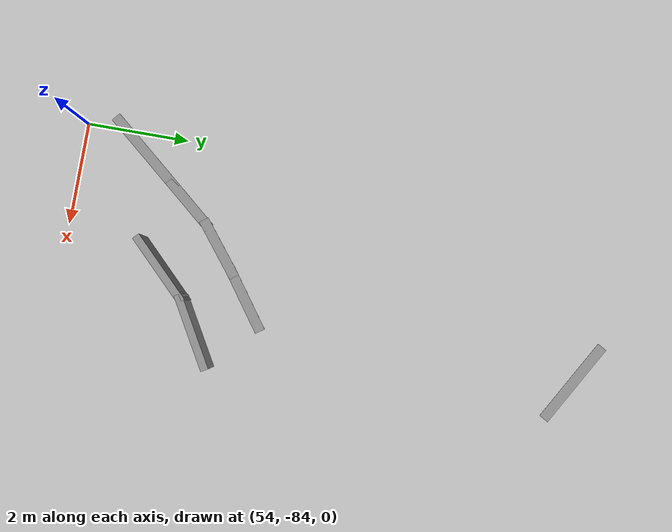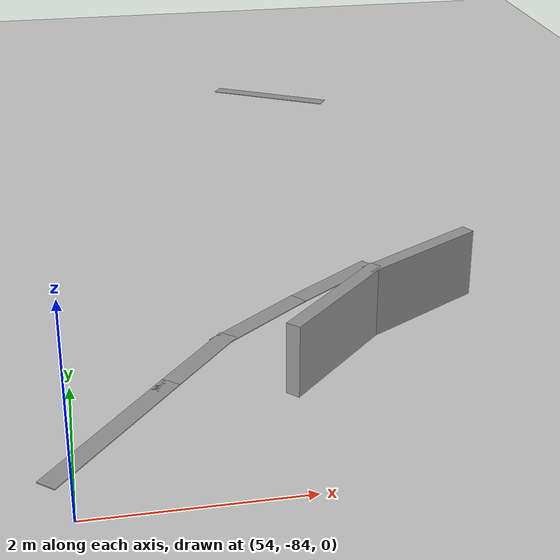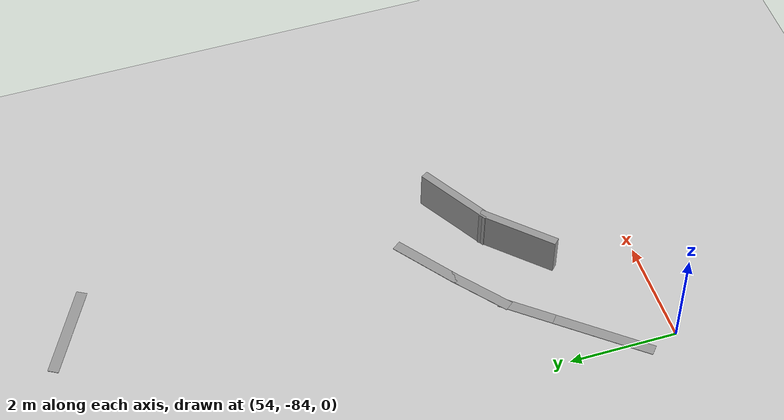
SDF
<sdf version="1.6">
 <world name="default">
  <model name="ground_plane">
   <static>1</static>
   <link name="link">
    <collision name="collision">
     <geometry><plane><normal>0 0 1</normal><size>100 100</size></plane></geometry>
     <surface>
      <contact><collide_bitmask>65535</collide_bitmask></contact>
      <friction><ode><mu>100</mu><mu2>50</mu2></ode></friction>
     </surface>
    </collision>
    <visual name="visual">
     <cast_shadows>0</cast_shadows>
     <geometry><plane><normal>0 0 1</normal><size>100 100</size></plane></geometry>
     <material>
      <script><uri>file://media/materials/scripts/gazebo.material</uri><name>Gazebo/Grey</name></script>
     </material>
    </visual>
   </link>
  </model>
  <model name="GercekDuvarSeritKoyu1">
   <link name="Wall_193">
    <pose>27.2546 -3.38059 0 0 -0 2.35672</pose>
    <inertial>
     <mass>1</mass>
     <inertia><ixx>1</ixx><ixy>0</ixy><ixz>0</ixz><iyy>1</iyy><iyz>0</iyz><izz>1</izz></inertia>
    </inertial>
    <visual name="Wall_193_Visual">
     <pose>0 0 0.375 0 -0 0</pose>
     <geometry><box><size>1.5 0.15 0.75</size></box></geometry>
     <material>
      <script><uri>file://media/materials/scripts/gazebo.material</uri><name>Gazebo/Grey</name></script>
      <ambient>0.5 0.5 0.5 1</ambient>
      <shader type="pixel"><normal_map>__default__</normal_map></shader>
      <diffuse>0.7 0.7 0.7 1</diffuse>
      <specular>0.01 0.01 0.01 1</specular>
      <emissive>0 0 0 1</emissive>
     </material>
     <meta><layer>0</layer></meta>
    </visual>
    <collision name="Wall_193_Collision">
     <pose>0 0 0.375 0 -0 0</pose>
     <geometry><box><size>1.5 0.15 0.75</size></box></geometry>
     <surface>
      <friction>
       <ode><mu>1</mu><mu2>1</mu2><fdir1>0 0 0</fdir1><slip1>0</slip1><slip2>0</slip2></ode>
       <torsional>
        <coefficient>1</coefficient>
        <patch_radius>0</patch_radius>
        <surface_radius>0</surface_radius>
        <use_patch_radius>1</use_patch_radius>
        <ode><slip>0</slip></ode>
       </torsional>
      </friction>
      <bounce><restitution_coefficient>0</restitution_coefficient><threshold>1e+06</threshold></bounce>
      <contact>
       <collide_without_contact>0</collide_without_contact>
       <collide_without_contact_bitmask>1</collide_without_contact_bitmask>
       <collide_bitmask>1</collide_bitmask>
       <ode>
        <soft_cfm>0</soft_cfm>
        <soft_erp>0.2</soft_erp>
        <kp>1e+13</kp>
        <kd>1</kd>
        <max_vel>0.01</max_vel>
        <min_depth>0</min_depth>
       </ode>
       <bullet>
        <split_impulse>1</split_impulse>
        <split_impulse_penetration_threshold>-0.01</split_impulse_penetration_threshold>
        <soft_cfm>0</soft_cfm>
        <soft_erp>0.2</soft_erp>
        <kp>1e+13</kp>
        <kd>1</kd>
       </bullet>
      </contact>
     </surface>
    </collision>
   </link>
   <link name="Wall_194">
    <pose>26.4396 -2.31859 0 0 -0 2.09408</pose>
    <inertial>
     <mass>1</mass>
     <inertia><ixx>1</ixx><ixy>0</ixy><ixz>0</ixz><iyy>1</iyy><iyz>0</iyz><izz>1</izz></inertia>
    </inertial>
    <visual name="Wall_194_Visual">
     <pose>0 0 0.375 0 -0 0</pose>
     <geometry><box><size>1.5 0.15 0.75</size></box></geometry>
     <material>
      <script><uri>file://media/materials/scripts/gazebo.material</uri><name>Gazebo/Grey</name></script>
      <ambient>0.5 0.5 0.5 1</ambient>
      <shader type="pixel"><normal_map>__default__</normal_map></shader>
      <diffuse>0.7 0.7 0.7 1</diffuse>
      <specular>0.01 0.01 0.01 1</specular>
      <emissive>0 0 0 1</emissive>
     </material>
     <meta><layer>0</layer></meta>
    </visual>
    <collision name="Wall_194_Collision">
     <pose>0 0 0.375 0 -0 0</pose>
     <geometry><box><size>1.5 0.15 0.75</size></box></geometry>
     <surface>
      <friction>
       <ode><mu>1</mu><mu2>1</mu2><fdir1>0 0 0</fdir1><slip1>0</slip1><slip2>0</slip2></ode>
       <torsional>
        <coefficient>1</coefficient>
        <patch_radius>0</patch_radius>
        <surface_radius>0</surface_radius>
        <use_patch_radius>1</use_patch_radius>
        <ode><slip>0</slip></ode>
       </torsional>
      </friction>
      <bounce><restitution_coefficient>0</restitution_coefficient><threshold>1e+06</threshold></bounce>
      <contact>
       <collide_without_contact>0</collide_without_contact>
       <collide_without_contact_bitmask>1</collide_without_contact_bitmask>
       <collide_bitmask>1</collide_bitmask>
       <ode>
        <soft_cfm>0</soft_cfm>
        <soft_erp>0.2</soft_erp>
        <kp>1e+13</kp>
        <kd>1</kd>
        <max_vel>0.01</max_vel>
        <min_depth>0</min_depth>
       </ode>
       <bullet>
        <split_impulse>1</split_impulse>
        <split_impulse_penetration_threshold>-0.01</split_impulse_penetration_threshold>
        <soft_cfm>0</soft_cfm>
        <soft_erp>0.2</soft_erp>
        <kp>1e+13</kp>
        <kd>1</kd>
       </bullet>
      </contact>
     </surface>
    </collision>
   </link>
   <link name="Wall_519">
    <pose>28.0766 -5.60359 0 0 -0 2.44476</pose>
    <visual name="Wall_519_Visual">
     <pose>0 0 0.005 0 -0 0</pose>
     <geometry><box><size>1.85475 0.2 0.01</size></box></geometry>
     <material>
      <script><uri>file://media/materials/scripts/gazebo.material</uri><name>Gazebo/Grey</name></script>
      <ambient>1 1 1 1</ambient>
      <shader type="pixel"/>
     </material>
     <meta><layer>0</layer></meta>
    </visual>
    <collision name="Wall_519_Collision">
     <pose>0 0 0.005 0 -0 0</pose>
     <geometry><box><size>1.85475 0.2 0.01</size></box></geometry>
     <surface>
      <friction>
       <ode><mu>1</mu><mu2>1</mu2><fdir1>0 0 0</fdir1><slip1>0</slip1><slip2>0</slip2></ode>
       <torsional>
        <coefficient>1</coefficient>
        <patch_radius>0</patch_radius>
        <surface_radius>0</surface_radius>
        <use_patch_radius>1</use_patch_radius>
        <ode><slip>0</slip></ode>
       </torsional>
      </friction>
      <bounce><restitution_coefficient>0</restitution_coefficient><threshold>1e+06</threshold></bounce>
      <contact>
       <collide_without_contact>0</collide_without_contact>
       <collide_without_contact_bitmask>1</collide_without_contact_bitmask>
       <collide_bitmask>1</collide_bitmask>
       <ode>
        <soft_cfm>0</soft_cfm>
        <soft_erp>0.2</soft_erp>
        <kp>1e+13</kp>
        <kd>1</kd>
        <max_vel>0.01</max_vel>
        <min_depth>0</min_depth>
       </ode>
       <bullet>
        <split_impulse>1</split_impulse>
        <split_impulse_penetration_threshold>-0.01</split_impulse_penetration_threshold>
        <soft_cfm>0</soft_cfm>
        <soft_erp>0.2</soft_erp>
        <kp>1e+13</kp>
        <kd>1</kd>
       </bullet>
      </contact>
     </surface>
    </collision>
   </link>
   <link name="Wall_520">
    <pose>27.0461 -4.74009 0 0 -0 2.44314</pose>
    <visual name="Wall_520_Visual">
     <pose>0 0 0.005 0 -0 0</pose>
     <geometry><box><size>1.23416 0.2 0.01</size></box></geometry>
     <material>
      <script><uri>file://media/materials/scripts/gazebo.material</uri><name>Gazebo/Grey</name></script>
      <ambient>1 1 1 1</ambient>
      <shader type="pixel"/>
     </material>
     <meta><layer>0</layer></meta>
    </visual>
    <collision name="Wall_520_Collision">
     <pose>0 0 0.005 0 -0 0</pose>
     <geometry><box><size>1.23416 0.2 0.01</size></box></geometry>
     <surface>
      <friction>
       <ode><mu>1</mu><mu2>1</mu2><fdir1>0 0 0</fdir1><slip1>0</slip1><slip2>0</slip2></ode>
       <torsional>
        <coefficient>1</coefficient>
        <patch_radius>0</patch_radius>
        <surface_radius>0</surface_radius>
        <use_patch_radius>1</use_patch_radius>
        <ode><slip>0</slip></ode>
       </torsional>
      </friction>
      <bounce><restitution_coefficient>0</restitution_coefficient><threshold>1e+06</threshold></bounce>
      <contact>
       <collide_without_contact>0</collide_without_contact>
       <collide_without_contact_bitmask>1</collide_without_contact_bitmask>
       <collide_bitmask>1</collide_bitmask>
       <ode>
        <soft_cfm>0</soft_cfm>
        <soft_erp>0.2</soft_erp>
        <kp>1e+13</kp>
        <kd>1</kd>
        <max_vel>0.01</max_vel>
        <min_depth>0</min_depth>
       </ode>
       <bullet>
        <split_impulse>1</split_impulse>
        <split_impulse_penetration_threshold>-0.01</split_impulse_penetration_threshold>
        <soft_cfm>0</soft_cfm>
        <soft_erp>0.2</soft_erp>
        <kp>1e+13</kp>
        <kd>1</kd>
       </bullet>
      </contact>
     </surface>
    </collision>
   </link>
   <link name="Wall_521">
    <pose>26.3181 -3.98459 0 0 -0 2.23624</pose>
    <visual name="Wall_521_Visual">
     <pose>0 0 0.005 0 -0 0</pose>
     <geometry><box><size>1.27546 0.2 0.01</size></box></geometry>
     <material>
      <script><uri>file://media/materials/scripts/gazebo.material</uri><name>Gazebo/Grey</name></script>
      <ambient>1 1 1 1</ambient>
      <shader type="pixel"/>
     </material>
     <meta><layer>0</layer></meta>
    </visual>
    <collision name="Wall_521_Collision">
     <pose>0 0 0.005 0 -0 0</pose>
     <geometry><box><size>1.27546 0.2 0.01</size></box></geometry>
     <surface>
      <friction>
       <ode><mu>1</mu><mu2>1</mu2><fdir1>0 0 0</fdir1><slip1>0</slip1><slip2>0</slip2></ode>
       <torsional>
        <coefficient>1</coefficient>
        <patch_radius>0</patch_radius>
        <surface_radius>0</surface_radius>
        <use_patch_radius>1</use_patch_radius>
        <ode><slip>0</slip></ode>
       </torsional>
      </friction>
      <bounce><restitution_coefficient>0</restitution_coefficient><threshold>1e+06</threshold></bounce>
      <contact>
       <collide_without_contact>0</collide_without_contact>
       <collide_without_contact_bitmask>1</collide_without_contact_bitmask>
       <collide_bitmask>1</collide_bitmask>
       <ode>
        <soft_cfm>0</soft_cfm>
        <soft_erp>0.2</soft_erp>
        <kp>1e+13</kp>
        <kd>1</kd>
        <max_vel>0.01</max_vel>
        <min_depth>0</min_depth>
       </ode>
       <bullet>
        <split_impulse>1</split_impulse>
        <split_impulse_penetration_threshold>-0.01</split_impulse_penetration_threshold>
        <soft_cfm>0</soft_cfm>
        <soft_erp>0.2</soft_erp>
        <kp>1e+13</kp>
        <kd>1</kd>
       </bullet>
      </contact>
     </surface>
    </collision>
   </link>
   <link name="Wall_522">
    <pose>25.6426 -3.08509 0 0 -0 2.1954</pose>
    <visual name="Wall_522_Visual">
     <pose>0 0 0.005 0 -0 0</pose>
     <geometry><box><size>1.37481 0.2 0.01</size></box></geometry>
     <material>
      <script><uri>file://media/materials/scripts/gazebo.material</uri><name>Gazebo/Grey</name></script>
      <ambient>1 1 1 1</ambient>
      <shader type="pixel"/>
     </material>
     <meta><layer>0</layer></meta>
    </visual>
    <collision name="Wall_522_Collision">
     <pose>0 0 0.005 0 -0 0</pose>
     <geometry><box><size>1.37481 0.2 0.01</size></box></geometry>
     <surface>
      <friction>
       <ode><mu>1</mu><mu2>1</mu2><fdir1>0 0 0</fdir1><slip1>0</slip1><slip2>0</slip2></ode>
       <torsional>
        <coefficient>1</coefficient>
        <patch_radius>0</patch_radius>
        <surface_radius>0</surface_radius>
        <use_patch_radius>1</use_patch_radius>
        <ode><slip>0</slip></ode>
       </torsional>
      </friction>
      <bounce><restitution_coefficient>0</restitution_coefficient><threshold>1e+06</threshold></bounce>
      <contact>
       <collide_without_contact>0</collide_without_contact>
       <collide_without_contact_bitmask>1</collide_without_contact_bitmask>
       <collide_bitmask>1</collide_bitmask>
       <ode>
        <soft_cfm>0</soft_cfm>
        <soft_erp>0.2</soft_erp>
        <kp>1e+13</kp>
        <kd>1</kd>
        <max_vel>0.01</max_vel>
        <min_depth>0</min_depth>
       </ode>
       <bullet>
        <split_impulse>1</split_impulse>
        <split_impulse_penetration_threshold>-0.01</split_impulse_penetration_threshold>
        <soft_cfm>0</soft_cfm>
        <soft_erp>0.2</soft_erp>
        <kp>1e+13</kp>
        <kd>1</kd>
       </bullet>
      </contact>
     </surface>
    </collision>
   </link>
   <link name="Wall_534">
    <pose>19.0821 -2.59659 0 0 -0 1.04731</pose>
    <visual name="Wall_534_Visual">
     <pose>0 0 0.005 0 -0 0</pose>
     <geometry><box><size>1.8001 0.2 0.01</size></box></geometry>
     <material>
      <script><uri>file://media/materials/scripts/gazebo.material</uri><name>Gazebo/Grey</name></script>
      <ambient>1 1 1 1</ambient>
      <shader type="pixel"/>
     </material>
     <meta><layer>0</layer></meta>
    </visual>
    <collision name="Wall_534_Collision">
     <pose>0 0 0.005 0 -0 0</pose>
     <geometry><box><size>1.8001 0.2 0.01</size></box></geometry>
     <surface>
      <friction>
       <ode><mu>1</mu><mu2>1</mu2><fdir1>0 0 0</fdir1><slip1>0</slip1><slip2>0</slip2></ode>
       <torsional>
        <coefficient>1</coefficient>
        <patch_radius>0</patch_radius>
        <surface_radius>0</surface_radius>
        <use_patch_radius>1</use_patch_radius>
        <ode><slip>0</slip></ode>
       </torsional>
      </friction>
      <bounce><restitution_coefficient>0</restitution_coefficient><threshold>1e+06</threshold></bounce>
      <contact>
       <collide_without_contact>0</collide_without_contact>
       <collide_without_contact_bitmask>1</collide_without_contact_bitmask>
       <collide_bitmask>1</collide_bitmask>
       <ode>
        <soft_cfm>0</soft_cfm>
        <soft_erp>0.2</soft_erp>
        <kp>1e+13</kp>
        <kd>1</kd>
        <max_vel>0.01</max_vel>
        <min_depth>0</min_depth>
       </ode>
       <bullet>
        <split_impulse>1</split_impulse>
        <split_impulse_penetration_threshold>-0.01</split_impulse_penetration_threshold>
        <soft_cfm>0</soft_cfm>
        <soft_erp>0.2</soft_erp>
        <kp>1e+13</kp>
        <kd>1</kd>
       </bullet>
      </contact>
     </surface>
    </collision>
   </link>
   <static>1</static>
   <pose>59.9324 -54.7034 -0 0 0 -1.5695</pose>
  </model>
 </world>
</sdf>
